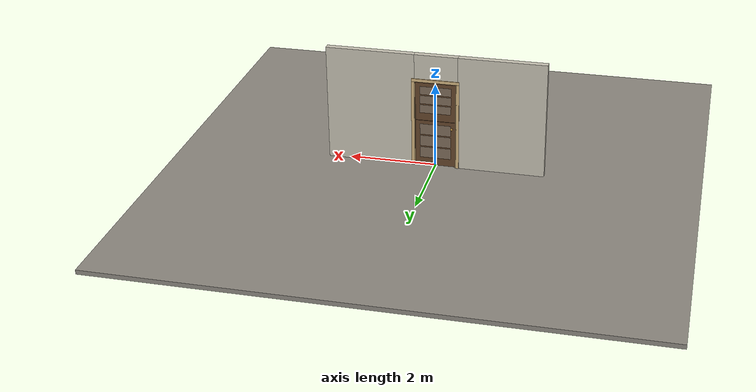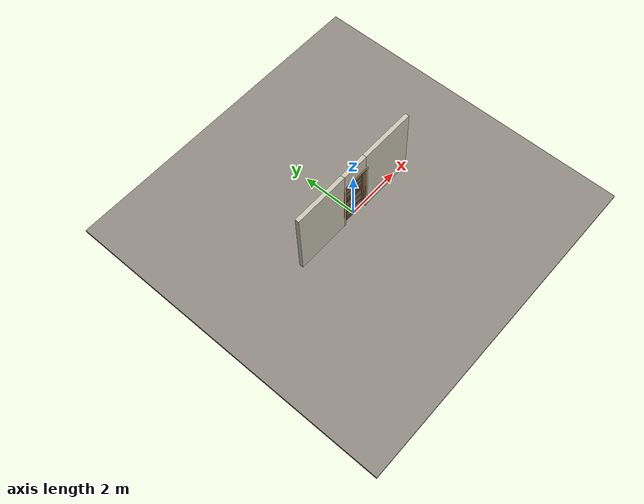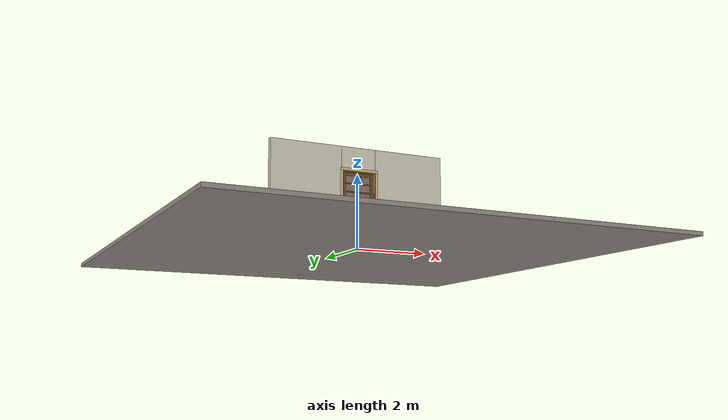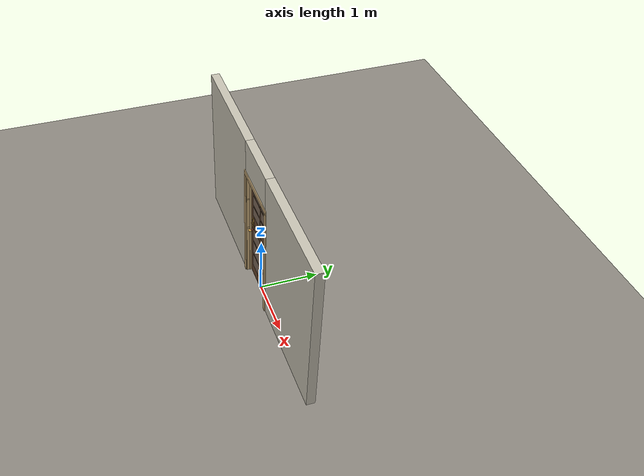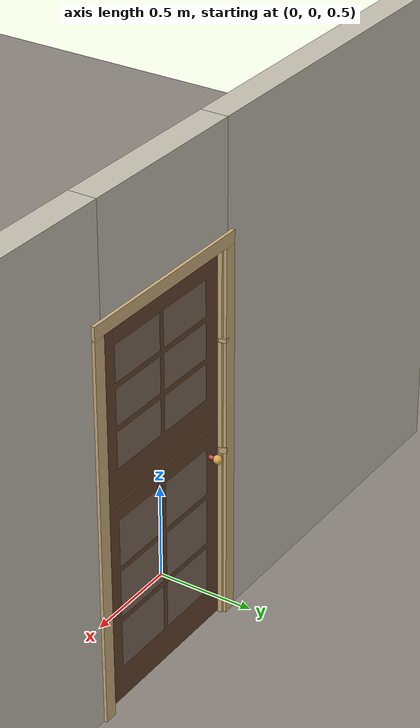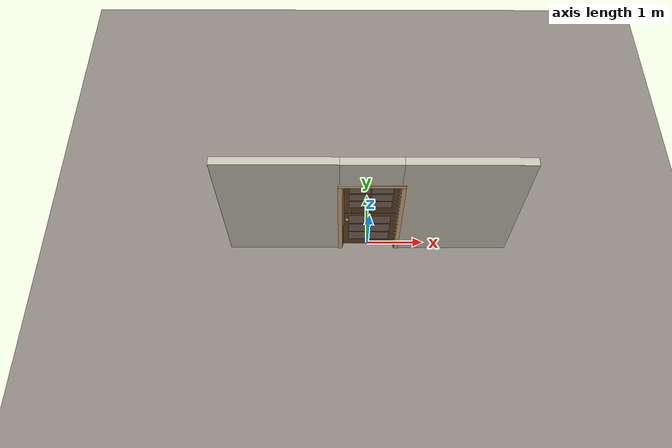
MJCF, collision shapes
<?xml version="1.0" ?>
<mujoco model="db0118_dutch_full">
  <compiler angle="radian" meshdir="../../hardware" texturedir="../../textures" autolimits="true" inertiafromgeom="false"/>
  <option timestep="0.002" integrator="implicitfast" cone="elliptic" impratio="10" noslip_iterations="3">
    <flag multiccd="enable"/>
  </option>
  <size memory="16M"/>
  <default>
    <geom condim="4" solref="0.005 1" solimp="0.95 0.99 0.001"/>
    <joint solreflimit="0.005 1" solimplimit="0.95 0.99 0.001"/>
    <tendon solreflimit="0.005 1"/>
    <equality solref="0.002 1"/>
  </default>
  <visual>
    <headlight ambient="0.4 0.4 0.4" diffuse="0.7 0.7 0.7" specular="0.2 0.2 0.2"/>
    <quality shadowsize="4096"/>
    <map znear="0.01" zfar="60"/>
  </visual>
  <asset>
    <mesh name="hinge_e22b26c0c1" file="hinge_e22b26c0c1.obj"/>
    <mesh name="hinge_jamb_e1d088f8dc" file="hinge_jamb_e1d088f8dc.obj"/>
    <mesh name="knob_d1888f6f03" file="knob_d1888f6f03.obj"/>
    <material name="mat_floor" rgba="0.55 0.53 0.5 1" specular="0.2" shininess="0.15" reflectance="0"/>
    <material name="mat_wall" rgba="0.78 0.76 0.7 1" specular="0.2" shininess="0.1" reflectance="0"/>
    <material name="mat_leaf_lower" rgba="0.391 0.27 0.17 1" specular="0.2" shininess="0.5" reflectance="0"/>
    <material name="mat_glass" rgba="0.85 0.92 0.95 0.25" specular="0.2" shininess="0.95" reflectance="0.1"/>
    <material name="mat_leaf_upper" rgba="0.391 0.27 0.17 1" specular="0.2" shininess="0.5" reflectance="0"/>
    <material name="mat_op_brass" rgba="0.85 0.66 0.3 1" specular="0.8" shininess="0.75" reflectance="0.4"/>
    <material name="mat_trim" rgba="0.85 0.66 0.3 1" specular="0.8" shininess="0.75" reflectance="0.4"/>
    <material name="mat_bolt" rgba="0.85 0.66 0.3 1" specular="0.8" shininess="0.75" reflectance="0.4"/>
    <material name="mat_joinbolt" rgba="0.85 0.66 0.3 1" specular="0.8" shininess="0.75" reflectance="0.4"/>
    <material name="mat_frame" rgba="0.82 0.7 0.5 1" specular="0.2" shininess="0.45" reflectance="0"/>
    <material name="mat_hinge" rgba="0.65 0.66 0.68 1" specular="0.74" shininess="0.5" reflectance="0.36"/>
    <texture name="skybox" type="skybox" builtin="gradient" rgb1="0.6 0.7 0.85" rgb2="0.9 0.92 0.95" width="256" height="256"/>
  </asset>
  <worldbody>
    <light name="sun" pos="1.5 -2.5 4" dir="-0.3 0.5 -0.8" directional="true" diffuse="0.8 0.8 0.8" specular="0.3 0.3 0.3" castshadow="true"/>
    <light name="fill" pos="-1.5 2.5 3" dir="0.3 -0.5 -0.7" directional="true" diffuse="0.35 0.35 0.4" castshadow="false"/>
    <camera name="robot_view" pos="0 -2.572687 1.734312" xyaxes="1 0 0 0 0.26963 0.962964" fovy="52"/>
    <camera name="far_view" pos="0 2.511687 1.734312" xyaxes="-1 0 0 0 -0.26963 0.962964" fovy="52"/>
    <camera name="iso" pos="-1.932062 -2.165938 2.141063" xyaxes="0.741536 -0.670913 0 0.242917 0.268487 0.932151" fovy="46"/>
    <camera name="detail_handle" pos="-0.2065 -0.8685 1.245" xyaxes="0.97561 0.219512 0 -0.070934 0.315262 0.94635" fovy="38"/>
    <geom name="floor" type="box" size="6 6 0.05" pos="0 0 -0.05" material="mat_floor" group="0" contype="1" conaffinity="1" friction="0.8 0.005 0.0001" density="2400"/>
    <geom name="wall_left" type="box" size="0.99525 0.0725 1.35" pos="-1.50475 -0.0305 1.35" material="mat_wall" group="0" contype="1" conaffinity="1" friction="0.6 0.005 0.0001" density="800"/>
    <geom name="wall_right" type="box" size="1.01025 0.0725 1.35" pos="1.48975 -0.0305 1.35" material="mat_wall" group="0" contype="1" conaffinity="1" friction="0.6 0.005 0.0001" density="800"/>
    <geom name="wall_header" type="box" size="0.4945 0.0725 0.303" pos="-0.015 -0.0305 2.397" material="mat_wall" group="0" contype="1" conaffinity="1" friction="0.6 0.005 0.0001" density="800"/>
    <geom name="jamb_hinge" type="box" size="0.0095 0.0725 1.0225" pos="0.47 -0.0305 1.0225" material="mat_frame" group="0" contype="1" conaffinity="1" friction="0.6 0.005 0.0001" density="400"/>
    <geom name="strike_965_wall_n" type="box" size="0.0245 0.047575 0.0167" pos="-0.485 -0.055425 0.965" material="mat_frame" group="0" contype="1" conaffinity="1" friction="0.6 0.005 0.0001" density="400"/>
    <geom name="strike_965_wall_p" type="box" size="0.0245 0.008 0.0167" pos="-0.485 0.01585 0.965" material="mat_frame" group="0" contype="1" conaffinity="1" friction="0.6 0.005 0.0001" density="400"/>
    <geom name="strike_965_ramp" type="box" size="0.0245 0.020268 0.0167" pos="-0.490408 0.034645 0.965" quat="0.985179 0 0 0.171531" material="mat_frame" group="0" contype="1" conaffinity="1" friction="0.12 0.005 0.0001" density="400"/>
    <geom name="strike_965_back" type="box" size="0.01615 0.00785 0.0167" pos="-0.49335 0 0.965" material="mat_frame" group="0" contype="1" conaffinity="1" friction="0.6 0.005 0.0001" density="400"/>
    <geom name="strike_1575_wall_n" type="box" size="0.0245 0.04775 0.01" pos="-0.485 -0.05525 1.575" material="mat_frame" group="0" contype="1" conaffinity="1" friction="0.6 0.005 0.0001" density="400"/>
    <geom name="strike_1575_wall_p" type="box" size="0.0245 0.008 0.01" pos="-0.485 0.0155 1.575" material="mat_frame" group="0" contype="1" conaffinity="1" friction="0.6 0.005 0.0001" density="400"/>
    <geom name="strike_1575_ramp" type="box" size="0.0245 0.019412 0.01" pos="-0.487296 0.039595 1.575" quat="0.997916 0 0 0.064529" material="mat_frame" group="0" contype="1" conaffinity="1" friction="0.12 0.005 0.0001" density="400"/>
    <geom name="strike_1575_ramp_n" type="box" size="0.0245 0.019412 0.01" pos="-0.487296 -0.027595 1.575" quat="0.997916 0 0 -0.064529" material="mat_frame" group="0" contype="1" conaffinity="1" friction="0.12 0.005 0.0001" density="400"/>
    <geom name="strike_1575_back" type="box" size="0.0205 0.0075 0.01" pos="-0.489 0 1.575" material="mat_frame" group="0" contype="1" conaffinity="1" friction="0.6 0.005 0.0001" density="400"/>
    <geom name="jamb_strike_0" type="box" size="0.0245 0.0725 0.47415" pos="-0.485 -0.0305 0.47415" material="mat_frame" group="0" contype="1" conaffinity="1" friction="0.6 0.005 0.0001" density="400"/>
    <geom name="jamb_strike_1" type="box" size="0.0245 0.0725 0.29165" pos="-0.485 -0.0305 1.27335" material="mat_frame" group="0" contype="1" conaffinity="1" friction="0.6 0.005 0.0001" density="400"/>
    <geom name="jamb_strike_2" type="box" size="0.0245 0.0725 0.23" pos="-0.485 -0.0305 1.815" material="mat_frame" group="0" contype="1" conaffinity="1" friction="0.6 0.005 0.0001" density="400"/>
    <geom name="jamb_head" type="box" size="0.4945 0.0725 0.0095" pos="-0.015 -0.0305 2.0545" material="mat_frame" group="0" contype="1" conaffinity="1" friction="0.6 0.005 0.0001" density="400"/>
    <geom name="head_stud" type="box" size="0.4945 0.0725 0.015" pos="-0.015 -0.0305 2.079" material="mat_wall" group="0" contype="1" conaffinity="1" friction="0.6 0.005 0.0001" density="500"/>
    <geom name="stop_hinge" type="box" size="0.0055 0.016 1.0225" pos="0.455 -0.0385 1.0225" material="mat_frame" group="0" contype="1" conaffinity="1" friction="0.6 0.005 0.0001" density="400"/>
    <geom name="stop_strike" type="box" size="0.0055 0.016 1.0225" pos="-0.455 -0.0385 1.0225" material="mat_frame" group="0" contype="1" conaffinity="1" friction="0.6 0.005 0.0001" density="400"/>
    <geom name="stop_head" type="box" size="0.4605 0.016 0.0055" pos="0 -0.0385 2.0395" material="mat_frame" group="0" contype="1" conaffinity="1" friction="0.6 0.005 0.0001" density="400"/>
    <geom name="casing_l_n" type="box" size="0.035 0.008 1.032" pos="-0.5095 -0.111 1.0225" material="mat_frame" group="2" contype="0" conaffinity="0" density="400"/>
    <geom name="casing_r_n" type="box" size="0.035 0.008 1.032" pos="0.5095 -0.111 1.0225" material="mat_frame" group="2" contype="0" conaffinity="0" density="400"/>
    <geom name="casing_h_n" type="box" size="0.5445 0.008 0.035" pos="0 -0.111 2.094" material="mat_frame" group="2" contype="0" conaffinity="0" density="400"/>
    <geom name="casing_l_p" type="box" size="0.035 0.008 1.032" pos="-0.5095 0.05 1.0225" material="mat_frame" group="2" contype="0" conaffinity="0" density="400"/>
    <geom name="casing_r_p" type="box" size="0.035 0.008 1.032" pos="0.5095 0.05 1.0225" material="mat_frame" group="2" contype="0" conaffinity="0" density="400"/>
    <geom name="casing_h_p" type="box" size="0.5445 0.008 0.035" pos="0 0.05 2.094" material="mat_frame" group="2" contype="0" conaffinity="0" density="400"/>
    <geom name="hinge_0_jamb" type="mesh" mesh="hinge_jamb_e1d088f8dc" pos="0.4605 0.029 0.262" quat="0 0 0 1" material="mat_hinge" group="1" contype="0" conaffinity="0" density="7850"/>
    <geom name="hinge_1_jamb" type="mesh" mesh="hinge_jamb_e1d088f8dc" pos="0.4605 0.029 0.486" quat="0 0 0 1" material="mat_hinge" group="1" contype="0" conaffinity="0" density="7850"/>
    <geom name="hinge_2_jamb" type="mesh" mesh="hinge_jamb_e1d088f8dc" pos="0.4605 0.029 0.71" quat="0 0 0 1" material="mat_hinge" group="1" contype="0" conaffinity="0" density="7850"/>
    <geom name="hinge_3_jamb" type="mesh" mesh="hinge_jamb_e1d088f8dc" pos="0.4605 0.029 0.934" quat="0 0 0 1" material="mat_hinge" group="1" contype="0" conaffinity="0" density="7850"/>
    <geom name="hinge_0_jamb_2" type="mesh" mesh="hinge_jamb_e1d088f8dc" pos="0.4605 0.029 1.372" quat="0 0 0 1" material="mat_hinge" group="1" contype="0" conaffinity="0" density="7850"/>
    <geom name="hinge_1_jamb_2" type="mesh" mesh="hinge_jamb_e1d088f8dc" pos="0.4605 0.029 1.532" quat="0 0 0 1" material="mat_hinge" group="1" contype="0" conaffinity="0" density="7850"/>
    <geom name="hinge_2_jamb_2" type="mesh" mesh="hinge_jamb_e1d088f8dc" pos="0.4605 0.029 1.692" quat="0 0 0 1" material="mat_hinge" group="1" contype="0" conaffinity="0" density="7850"/>
    <geom name="hinge_3_jamb_2" type="mesh" mesh="hinge_jamb_e1d088f8dc" pos="0.4605 0.029 1.852" quat="0 0 0 1" material="mat_hinge" group="1" contype="0" conaffinity="0" density="7850"/>
    <site name="approach_point" pos="0 -1.5 0" quat="1 0 0 0" size="0.05" rgba="0.2 0.9 0.2 0.5" group="4"/>
    <site name="goal_point" pos="0 1.5 0" quat="1 0 0 0" size="0.05" rgba="0.2 0.9 0.2 0.5" group="4"/>
    <site name="door_plane_center" pos="0 0 1.0225" quat="1 0 0 0" size="0.02" rgba="0.2 0.9 0.2 0.5" group="4"/>
    <body name="leaf_lower" pos="0.4605 0 0">
      <inertial pos="-0.082284 0.013758 0.627846" mass="22.087265" quat="-0.352508 0.322325 0.627824 0.614558" diaginertia="0.89784624 1.976505853 2.863224765"/>
      <joint name="leaf_lower_hinge" type="hinge" axis="0 0 -1" pos="-0.003 0.029 0" limited="true" range="0 1.745329" damping="0.30611" frictionloss="0.3875" armature="0.02"/>
      <geom name="leaf_lower_slab" type="box" size="0.457 0.022 0.551" pos="-0.46 0 0.563" material="mat_leaf_lower" group="0" contype="1" conaffinity="1" friction="0.4 0.005 0.0001" density="1"/>
      <geom name="leaf_lower_glass_0" type="box" size="0.17073 0.0228 0.128667" pos="-0.27427 0 0.320667" material="mat_glass" group="1" contype="0" conaffinity="0" density="1"/>
      <geom name="leaf_lower_glass_1" type="box" size="0.17073 0.0228 0.128667" pos="-0.64573 0 0.320667" material="mat_glass" group="1" contype="0" conaffinity="0" density="1"/>
      <geom name="leaf_lower_glass_2" type="box" size="0.17073 0.0228 0.128667" pos="-0.27427 0 0.608" material="mat_glass" group="1" contype="0" conaffinity="0" density="1"/>
      <geom name="leaf_lower_glass_3" type="box" size="0.17073 0.0228 0.128667" pos="-0.64573 0 0.608" material="mat_glass" group="1" contype="0" conaffinity="0" density="1"/>
      <geom name="leaf_lower_glass_4" type="box" size="0.17073 0.0228 0.128667" pos="-0.27427 0 0.895333" material="mat_glass" group="1" contype="0" conaffinity="0" density="1"/>
      <geom name="leaf_lower_glass_5" type="box" size="0.17073 0.0228 0.128667" pos="-0.64573 0 0.895333" material="mat_glass" group="1" contype="0" conaffinity="0" density="1"/>
      <geom name="lower_latch_bolt_faceplate" type="box" size="0.0006 0.01235 0.0267" pos="-0.9164 0 0.965" material="mat_bolt" group="1" contype="0" conaffinity="0" density="8500"/>
      <geom name="join_keeper_leg_n" type="box" size="0.007 0.0025 0.013" pos="-0.8085 -0.035 1.088" quat="-0.5 -0.5 -0.5 0.5" material="mat_joinbolt" group="0" contype="1" conaffinity="1" friction="0.6 0.005 0.0001" density="7800"/>
      <geom name="join_keeper_leg_p" type="box" size="0.007 0.0025 0.013" pos="-0.7855 -0.035 1.088" quat="-0.5 -0.5 -0.5 0.5" material="mat_joinbolt" group="0" contype="1" conaffinity="1" friction="0.6 0.005 0.0001" density="7800"/>
      <geom name="join_keeper_bridge" type="box" size="0.007 0.014 0.0025" pos="-0.797 -0.0455 1.088" quat="-0.5 -0.5 -0.5 0.5" material="mat_joinbolt" group="0" contype="1" conaffinity="1" friction="0.6 0.005 0.0001" density="7800"/>
      <geom name="join_keeper_base" type="box" size="0.013 0.02 0.001" pos="-0.797 -0.023 1.088" quat="-0.5 -0.5 -0.5 0.5" material="mat_joinbolt" group="1" contype="0" conaffinity="0" density="7800"/>
      <geom name="hinge_0" type="mesh" mesh="hinge_e22b26c0c1" pos="0 0.029 0.262" quat="0 0 0 1" material="mat_hinge" group="1" contype="0" conaffinity="0" density="7850"/>
      <geom name="hinge_1" type="mesh" mesh="hinge_e22b26c0c1" pos="0 0.029 0.486" quat="0 0 0 1" material="mat_hinge" group="1" contype="0" conaffinity="0" density="7850"/>
      <geom name="hinge_2" type="mesh" mesh="hinge_e22b26c0c1" pos="0 0.029 0.71" quat="0 0 0 1" material="mat_hinge" group="1" contype="0" conaffinity="0" density="7850"/>
      <geom name="hinge_3" type="mesh" mesh="hinge_e22b26c0c1" pos="0 0.029 0.934" quat="0 0 0 1" material="mat_hinge" group="1" contype="0" conaffinity="0" density="7850"/>
      <body name="lower_handle" pos="-0.847 0 0.965">
        <inertial pos="0 0 0" mass="1.151952" quat="0.707107 0 0 -0.707107" diaginertia="0.000312514 0.004264603 0.004264603"/>
        <joint name="lower_handle_hinge" type="hinge" axis="0 1 0" limited="true" range="0 0.87" damping="0.143614" frictionloss="0.038" stiffness="0.5" springref="-0.5" armature="0.01"/>
        <geom name="lower_handle_spindle" type="cylinder" size="0.006 0.03" pos="0 0 0" quat="0.707107 -0.707107 0 0" material="mat_op_brass" group="1" contype="0" conaffinity="0" density="7850"/>
        <geom name="lower_handle_knob_n" type="mesh" mesh="knob_d1888f6f03" pos="0 -0.022 0" quat="0 0 -0.707107 0.707107" material="mat_op_brass" group="1" contype="0" conaffinity="0" density="3000"/>
        <geom name="lower_handle_knob_col_n" type="sphere" size="0.0243" pos="0 -0.0685 0" material="mat_op_brass" group="0" contype="1" conaffinity="1" friction="0.9 0.01 0.0001" density="3000"/>
        <geom name="lower_handle_knob_neck_n" type="cylinder" size="0.011 0.012" pos="0 -0.034 0" quat="0.707107 -0.707107 0 0" material="mat_op_brass" group="3" contype="1" conaffinity="1" rgba="0.8 0.3 0.3 0.25" friction="0.6 0.005 0.0001" density="3000"/>
        <geom name="lower_handle_knob_p" type="mesh" mesh="knob_d1888f6f03" pos="0 0.022 0" quat="0 0 0.707107 0.707107" material="mat_op_brass" group="1" contype="0" conaffinity="0" density="3000"/>
        <geom name="lower_handle_knob_col_p" type="sphere" size="0.0243" pos="0 0.0685 0" material="mat_op_brass" group="0" contype="1" conaffinity="1" friction="0.9 0.01 0.0001" density="3000"/>
        <geom name="lower_handle_knob_neck_p" type="cylinder" size="0.011 0.012" pos="0 0.034 0" quat="0.707107 -0.707107 0 0" material="mat_op_brass" group="3" contype="1" conaffinity="1" rgba="0.8 0.3 0.3 0.25" friction="0.6 0.005 0.0001" density="3000"/>
        <site name="lower_handle_grip_n" pos="0 -0.0685 0" quat="1 0 0 0" size="0.012" rgba="0.2 0.9 0.2 0.5" group="4"/>
        <site name="lower_handle_grip_p" pos="0 0.0685 0" quat="1 0 0 0" size="0.012" rgba="0.2 0.9 0.2 0.5" group="4"/>
      </body>
      <body name="lower_latch_bolt" pos="-0.917 0 0.965">
        <inertial pos="0.00865 0 0" mass="0.041419" quat="0.92388 0.382683 0 0" diaginertia="0.000000798 0.000005598 0.000005598"/>
        <joint name="lower_latch_bolt_slide" type="slide" axis="1 0 0" limited="true" range="0 0.0127" damping="2" frictionloss="0.3" stiffness="300" springref="-0.008333" armature="0.1"/>
        <geom name="lower_latch_bolt_capsule" type="capsule" size="0.00635 0.015" pos="0.00865 0 0" quat="0.707107 0 -0.707107 0" material="mat_bolt" group="0" contype="1" conaffinity="1" friction="0.2 0.005 0.0001" density="8500"/>
      </body>
    </body>
    <body name="leaf_upper" pos="0.4605 0 0">
      <inertial pos="-0.120079 0.011505 1.562863" mass="17.67192" quat="0.676046 0.680671 -0.181445 0.216163" diaginertia="0.479221084 1.76432832 2.235250607"/>
      <joint name="leaf_upper_hinge" type="hinge" axis="0 0 -1" pos="-0.003 0.029 0" limited="true" range="0 1.745329" damping="0.30611" frictionloss="0.3875" armature="0.02"/>
      <geom name="leaf_upper_slab" type="box" size="0.457 0.022 0.455" pos="-0.46 0 1.577" material="mat_leaf_upper" group="0" contype="1" conaffinity="1" friction="0.4 0.005 0.0001" density="1"/>
      <geom name="leaf_upper_glass_0" type="box" size="0.17073 0.0228 0.096667" pos="-0.27427 0 1.398667" material="mat_glass" group="1" contype="0" conaffinity="0" density="1"/>
      <geom name="leaf_upper_glass_1" type="box" size="0.17073 0.0228 0.096667" pos="-0.64573 0 1.398667" material="mat_glass" group="1" contype="0" conaffinity="0" density="1"/>
      <geom name="leaf_upper_glass_2" type="box" size="0.17073 0.0228 0.096667" pos="-0.27427 0 1.622" material="mat_glass" group="1" contype="0" conaffinity="0" density="1"/>
      <geom name="leaf_upper_glass_3" type="box" size="0.17073 0.0228 0.096667" pos="-0.64573 0 1.622" material="mat_glass" group="1" contype="0" conaffinity="0" density="1"/>
      <geom name="leaf_upper_glass_4" type="box" size="0.17073 0.0228 0.096667" pos="-0.27427 0 1.845333" material="mat_glass" group="1" contype="0" conaffinity="0" density="1"/>
      <geom name="leaf_upper_glass_5" type="box" size="0.17073 0.0228 0.096667" pos="-0.64573 0 1.845333" material="mat_glass" group="1" contype="0" conaffinity="0" density="1"/>
      <geom name="upper_catch_faceplate" type="box" size="0.0006 0.012 0.02" pos="-0.9164 0 1.575" material="mat_bolt" group="1" contype="0" conaffinity="0" density="8500"/>
      <geom name="join_bolt_plate" type="box" size="0.064 0.019 0.001" pos="-0.797 -0.023 1.194" quat="-0.5 -0.5 -0.5 0.5" material="mat_joinbolt" group="1" contype="0" conaffinity="0" density="7800"/>
      <geom name="join_bolt_guide_0_leg_n" type="box" size="0.006 0.002 0.0125" pos="-0.808 -0.0345 1.138" quat="-0.5 -0.5 -0.5 0.5" material="mat_joinbolt" group="1" contype="0" conaffinity="0" density="7800"/>
      <geom name="join_bolt_guide_0_leg_p" type="box" size="0.006 0.002 0.0125" pos="-0.786 -0.0345 1.138" quat="-0.5 -0.5 -0.5 0.5" material="mat_joinbolt" group="1" contype="0" conaffinity="0" density="7800"/>
      <geom name="join_bolt_guide_0_bridge" type="box" size="0.006 0.013 0.002" pos="-0.797 -0.045 1.138" quat="-0.5 -0.5 -0.5 0.5" material="mat_joinbolt" group="1" contype="0" conaffinity="0" density="7800"/>
      <geom name="join_bolt_guide_1_leg_n" type="box" size="0.006 0.002 0.0125" pos="-0.808 -0.0345 1.248" quat="-0.5 -0.5 -0.5 0.5" material="mat_joinbolt" group="1" contype="0" conaffinity="0" density="7800"/>
      <geom name="join_bolt_guide_1_leg_p" type="box" size="0.006 0.002 0.0125" pos="-0.786 -0.0345 1.248" quat="-0.5 -0.5 -0.5 0.5" material="mat_joinbolt" group="1" contype="0" conaffinity="0" density="7800"/>
      <geom name="join_bolt_guide_1_bridge" type="box" size="0.006 0.013 0.002" pos="-0.797 -0.045 1.248" quat="-0.5 -0.5 -0.5 0.5" material="mat_joinbolt" group="1" contype="0" conaffinity="0" density="7800"/>
      <geom name="hinge_0_2" type="mesh" mesh="hinge_e22b26c0c1" pos="0 0.029 1.372" quat="0 0 0 1" material="mat_hinge" group="1" contype="0" conaffinity="0" density="7850"/>
      <geom name="hinge_1_2" type="mesh" mesh="hinge_e22b26c0c1" pos="0 0.029 1.532" quat="0 0 0 1" material="mat_hinge" group="1" contype="0" conaffinity="0" density="7850"/>
      <geom name="hinge_2_2" type="mesh" mesh="hinge_e22b26c0c1" pos="0 0.029 1.692" quat="0 0 0 1" material="mat_hinge" group="1" contype="0" conaffinity="0" density="7850"/>
      <geom name="hinge_3_2" type="mesh" mesh="hinge_e22b26c0c1" pos="0 0.029 1.852" quat="0 0 0 1" material="mat_hinge" group="1" contype="0" conaffinity="0" density="7850"/>
      <body name="upper_catch" pos="-0.917 0 1.575">
        <inertial pos="0.013 0 0" mass="0.02884" quat="0 0 -0.707107 0.707107" diaginertia="0.000000491 0.000002465 0.000002465"/>
        <joint name="upper_catch_slide" type="slide" axis="1 0 0" limited="true" range="0 0.004" damping="2" frictionloss="0.3" stiffness="4000" springref="-0.00375" armature="0.1"/>
        <geom name="upper_catch_capsule" type="capsule" size="0.006 0.011" pos="0.013 0 0" quat="0.707107 0 -0.707107 0" material="mat_bolt" group="0" contype="1" conaffinity="1" friction="0.2 0.005 0.0001" density="8500"/>
      </body>
      <body name="join_bolt" pos="-0.797 -0.034 1.122">
        <inertial pos="0 -0.00492 0.025264" mass="0.111784" quat="-0.065075 0.704106 -0.065075 0.704106" diaginertia="0.000009833 0.000100603 0.000108548"/>
        <joint name="join_bolt_slide" type="slide" axis="0 0 1" limited="true" range="0 0.05" damping="1" frictionloss="1" armature="0.1"/>
        <geom name="join_bolt_rod" type="capsule" size="0.006 0.044" pos="0 0 0.016" quat="0 1 0 0" material="mat_joinbolt" group="0" contype="1" conaffinity="1" friction="0.6 0.005 0.0001" density="7850"/>
        <geom name="join_bolt_knob" type="capsule" size="0.005 0.01" pos="0 -0.015 0.055" quat="0.707107 0.707107 0 0" material="mat_joinbolt" group="0" contype="1" conaffinity="1" friction="0.6 0.005 0.0001" density="7850"/>
        <geom name="join_bolt_knob_end" type="sphere" size="0.00675" pos="0 -0.03 0.055" material="mat_joinbolt" group="1" contype="0" conaffinity="0" density="7850"/>
        <site name="join_bolt_grip" pos="0 -0.034 0.055" quat="1 0 0 0" size="0.012" rgba="0.2 0.9 0.2 0.5" group="4"/>
      </body>
    </body>
  </worldbody>
  <tendon>
    <fixed name="lower_latch_bolt_coupling" limited="true" range="0 10">
      <joint joint="lower_latch_bolt_slide" coef="1"/>
      <joint joint="lower_handle_hinge" coef="-0.015679"/>
    </fixed>
  </tendon>
  <sensor>
    <jointpos name="leaf_lower_hinge_pos" joint="leaf_lower_hinge"/>
    <jointvel name="leaf_lower_hinge_vel" joint="leaf_lower_hinge"/>
    <jointpos name="leaf_upper_hinge_pos" joint="leaf_upper_hinge"/>
    <jointvel name="leaf_upper_hinge_vel" joint="leaf_upper_hinge"/>
    <jointpos name="lower_handle_hinge_pos" joint="lower_handle_hinge"/>
    <jointvel name="lower_handle_hinge_vel" joint="lower_handle_hinge"/>
    <jointpos name="lower_latch_bolt_slide_pos" joint="lower_latch_bolt_slide"/>
    <jointvel name="lower_latch_bolt_slide_vel" joint="lower_latch_bolt_slide"/>
    <jointpos name="upper_catch_slide_pos" joint="upper_catch_slide"/>
    <jointvel name="upper_catch_slide_vel" joint="upper_catch_slide"/>
    <jointpos name="join_bolt_slide_pos" joint="join_bolt_slide"/>
    <jointvel name="join_bolt_slide_vel" joint="join_bolt_slide"/>
  </sensor>
</mujoco>
